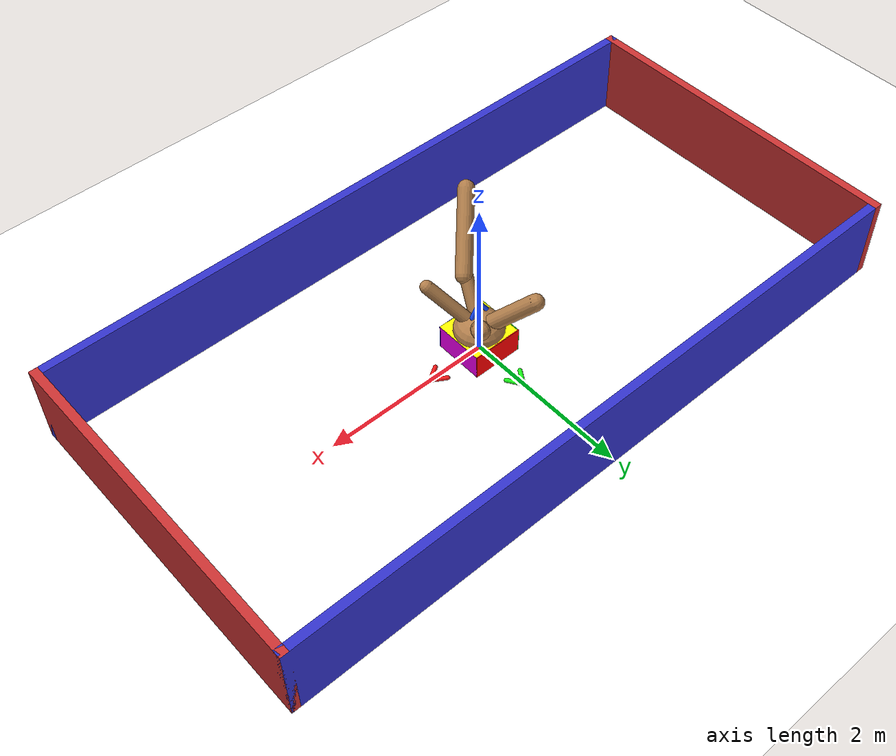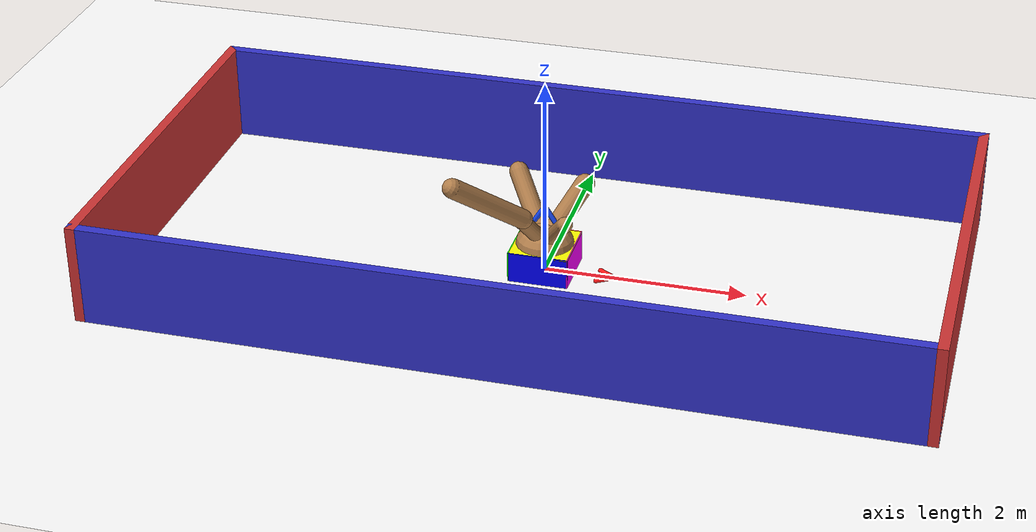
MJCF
<mujoco model="dex-gripper">
  <asset>
    <texture name="skybox" type="skybox" builtin="gradient" rgb1=".2 .3 .4" rgb2="0 0 0" width="800" height="800" mark="random" markrgb="1 1 1"/>
    <texture name="grid" type="2d" builtin="checker" rgb1=".2 .1 .2" rgb2=".3 .2 .3" width="300" height="300" mark="edge" markrgb=".3 .2 .3"/>
    <material name="grid" texture="grid" texrepeat="1 1" texuniform="true" reflectance=".2"/>
    <material name="self" rgba=".7 .5 .3 1"/>
  </asset>
  <visual>
    <headlight ambient=".4 .4 .4" diffuse=".8 .8 .8" specular="0.1 0.1 0.1"/>
    <map znear=".001"/>
    <quality shadowsize="16384"/>
  </visual>
  <compiler coordinate="local" angle="degree" inertiafromgeom="true"/>
  <option integrator="RK4" timestep="0.01"/>
  <default>
    <joint armature="1" damping="1" limited="true"/>
    <geom conaffinity="0" condim="3" density="5.0" friction="1 0.5 0.5" margin="0.01" rgba=".7 .5 .3 1"/>
  </default>
  <worldbody>
    <light cutoff="100" diffuse="1 1 1" dir="0.3 0 -1.3" directional="true" exponent="1" pos="-30 0 130" specular=".1 .1 .1"/>
    <geom conaffinity="1" condim="3" name="floor" pos="0 0 0" rgba="1 1 1 1" size="200 200 .125" type="plane" material="grid"/>
    <!-- Fixed gripper base: no root slide joints anymore -->
    <body name="0" pos="0 0 0.3" gravcomp="1">
      <camera name="track" mode="fixed" pos="0 10 5" quat="0 0 0.547 0.892"/>
      <geom pos="0 0 0" size="0.287597 0.281905 0.190097" type="ellipsoid"/>
      <!-- Arm 1: flipped upward -->
      <body name="1" pos="0 0 0" gravcomp="1">
        <joint axis="-0.707107 0.707107 0" name="1_joint" pos="0 0 0" range="-45 45" type="hinge" damping="0"/>
        <geom fromto="-0.052231 -0.062553 -0.084996 0.307258 0.367976 0.5" size="0.098993 0.098993 0.098993" type="capsule"/>
      </body>
      <!-- Arm 2: flipped upward -->
      <body name="2" pos="0 0 0" gravcomp="1">
        <joint axis="-0.707107 -0.707107 0" name="2_joint" pos="0 0 0" range="-45 45" type="hinge" damping="0"/>
        <geom fromto="0.048727 -0.057669 -0.063558 -0.383322 0.453667 0.5" size="0.09585 0.09585 0.09585" type="capsule"/>
      </body>
      <!-- Arm 3: flipped upward -->
      <body name="3" pos="0 0 0" gravcomp="1">
        <joint axis="0.707107 -0.707107 0" name="3_joint" pos="0 0 0" range="-45 45" type="hinge" damping="0"/>
        <geom fromto="0.0073 0.018618 -0.02182 -0.167285 -0.426619 0.5" size="0.077109 0.077109 0.077109" type="capsule"/>
        <body name="13" pos="-0.167285 -0.426619 0.5" gravcomp="1">
          <joint axis="0.707107 -0.707107 0" name="13_joint" pos="0 0 0" range="-45 45" type="hinge" damping="0"/>
          <geom fromto="0.047994 0.049851 -0.050225 -0.477791 -0.496278 0.5" size="0.095356 0.095356 0.095356" type="capsule"/>
        </body>
      </body>
      <!-- Arm 4: flipped upward -->
      <body name="4" pos="0 0 0" gravcomp="1">
        <joint axis="0.707107 0.707107 0" name="4_joint" pos="0 0 0" range="-45 45" type="hinge" damping="0"/>
        <geom fromto="-0.021443 0.031792 -0.033879 0.316469 -0.469207 0.5" size="0.076451 0.076451 0.076451" type="capsule"/>
      </body>
    </body>
    <!-- Box starts above the gripper -->
    <body name="box" pos="0 0 0">
      <freejoint name="box_joint"/>
      <!-- Top (Yellow) -->
      <geom name="box_top" type="box" pos="0 0 0.295" size="0.3 0.3 0.005" rgba="1 1 0 1" density="10" friction="2.5 0.1 0.05" contype="1" conaffinity="1"/>
      <!-- Bottom (White) -->
      <geom name="box_bottom" type="box" pos="0 0 -0.295" size="0.3 0.3 0.005" rgba="1 1 1 1" density="10" friction="2.5 0.1 0.05" contype="1" conaffinity="1"/>
      <!-- Front (Red) -->
      <geom name="box_front" type="box" pos="0 0.295 0" size="0.3 0.005 0.3" rgba="1 0 0 1" density="10" friction="2.5 0.1 0.05" contype="1" conaffinity="1"/>
      <!-- Back (Blue) -->
      <geom name="box_back" type="box" pos="0 -0.295 0" size="0.3 0.005 0.3" rgba="0 0 1 1" density="10" friction="2.5 0.1 0.05" contype="1" conaffinity="1"/>
      <!-- Left (Green) -->
      <geom name="box_left" type="box" pos="-0.295 0 0" size="0.005 0.3 0.3" rgba="0 1 0 1" density="10" friction="2.5 0.1 0.05" contype="1" conaffinity="1"/>
      <!-- Right (Magenta) -->
      <geom name="box_right" type="box" pos="0.295 0 0" size="0.005 0.3 0.3" rgba="1 0 1 1" density="10" friction="2.5 0.1 0.05" contype="1" conaffinity="1"/>
    </body>
    <!-- RGB arrows visualize the target orientation and never participate in collisions. -->
    <body name="goal_orientation_frame" pos="0 0 0">
      <!-- Goal X axis (red). -->
      <geom name="goal_axis_x_shaft" type="capsule" fromto="0 0 0 0.7 0 0" size="0.018" rgba="1 0.1 0.1 0.9" contype="0" conaffinity="0"/>
      <geom name="goal_axis_x_head_pos" type="capsule" fromto="0.7 0 0 0.54 0.1 0" size="0.025" rgba="1 0.1 0.1 0.9" contype="0" conaffinity="0"/>
      <geom name="goal_axis_x_head_neg" type="capsule" fromto="0.7 0 0 0.54 -0.1 0" size="0.025" rgba="1 0.1 0.1 0.9" contype="0" conaffinity="0"/>
      <!-- Goal Y axis (green). -->
      <geom name="goal_axis_y_shaft" type="capsule" fromto="0 0 0 0 0.7 0" size="0.018" rgba="0.1 1 0.1 0.9" contype="0" conaffinity="0"/>
      <geom name="goal_axis_y_head_pos" type="capsule" fromto="0 0.7 0 0.1 0.54 0" size="0.025" rgba="0.1 1 0.1 0.9" contype="0" conaffinity="0"/>
      <geom name="goal_axis_y_head_neg" type="capsule" fromto="0 0.7 0 -0.1 0.54 0" size="0.025" rgba="0.1 1 0.1 0.9" contype="0" conaffinity="0"/>
      <!-- Goal Z axis (blue). -->
      <geom name="goal_axis_z_shaft" type="capsule" fromto="0 0 0 0 0 0.7" size="0.018" rgba="0.1 0.3 1 0.9" contype="0" conaffinity="0"/>
      <geom name="goal_axis_z_head_pos" type="capsule" fromto="0 0 0.7 0.1 0 0.54" size="0.025" rgba="0.1 0.3 1 0.9" contype="0" conaffinity="0"/>
      <geom name="goal_axis_z_head_neg" type="capsule" fromto="0 0 0.7 -0.1 0 0.54" size="0.025" rgba="0.1 0.3 1 0.9" contype="0" conaffinity="0"/>
    </body>
    <body name="box_walls" pos="0 0 0">
      <geom name="wall_left" type="box" pos="-4.0 0 0.5" size="0.05 2.05 0.5" rgba="0.8 0.2 0.2 1" contype="1" conaffinity="1"/>
      <geom name="wall_right" type="box" pos="4.0 0 0.5" size="0.05 2.05 0.5" rgba="0.8 0.2 0.2 1" contype="1" conaffinity="1"/>
      <geom name="wall_front" type="box" pos="0 2.0 0.5" size="4.05 0.05 0.5" rgba="0.2 0.2 0.8 1" contype="1" conaffinity="1"/>
      <geom name="wall_back" type="box" pos="0 -2.0 0.5" size="4.05 0.05 0.5" rgba="0.2 0.2 0.8 1" contype="1" conaffinity="1"/>
    </body>
  </worldbody>
  <actuator>
    <!-- Only the finger joints remain actuated -->
    <motor ctrllimited="true" ctrlrange="-1.0 1.0" joint="1_joint" gear="71.268254" name="1_joint"/>
    <motor ctrllimited="true" ctrlrange="-1.0 1.0" joint="2_joint" gear="108.923132" name="2_joint"/>
    <motor ctrllimited="true" ctrlrange="-1.0 1.0" joint="3_joint" gear="92.3763" name="3_joint"/>
    <motor ctrllimited="true" ctrlrange="-1.0 1.0" joint="4_joint" gear="128.226524" name="4_joint"/>
    <motor ctrllimited="true" ctrlrange="-1.0 1.0" joint="13_joint" gear="100.502969" name="13_joint"/>
  </actuator>
</mujoco>
